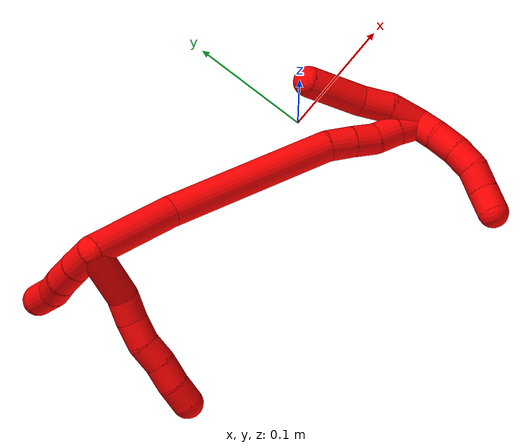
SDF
<sdf version="1.7">
 <world name="default">
  <model name="2">
   <static>0</static>
   <link name="2">
    <collision name="collision-cylinder-e_1_2_8">
     <pose>0.00208 -0.023793 -0.00298 1.6954 0.086504 0.097998</pose>
     <geometry><cylinder><radius>0.0125</radius><length>0.048139</length></cylinder></geometry>
     <surface>
      <friction><ode><mu>1.16</mu><mu2>1.16</mu2><slip1>0</slip1><slip2>0</slip2></ode></friction>
      <contact><ode><kp>1e+06</kp><kd>1</kd><max_vel>0</max_vel><min_depth>0.001</min_depth></ode></contact>
     </surface>
    </collision>
    <visual name="visual-cylinder-e_1_2_8">
     <pose>0.00208 -0.023793 -0.00298 1.6954 0.086504 0.097998</pose>
     <geometry><cylinder><radius>0.0125</radius><length>0.048139</length></cylinder></geometry>
     <material><ambient>1 0 0 1</ambient></material>
    </visual>
    <collision name="collision-cylinder-e_2_8_9">
     <pose>0.001766 -0.057552 -0.006656 1.6405 -0.235102 -0.251916</pose>
     <geometry><cylinder><radius>0.0125</radius><length>0.020544</length></cylinder></geometry>
     <surface>
      <friction><ode><mu>1.16</mu><mu2>1.16</mu2><slip1>0</slip1><slip2>0</slip2></ode></friction>
      <contact><ode><kp>1e+06</kp><kd>1</kd><max_vel>0</max_vel><min_depth>0.001</min_depth></ode></contact>
     </surface>
    </collision>
    <visual name="visual-cylinder-e_2_8_9">
     <pose>0.001766 -0.057552 -0.006656 1.6405 -0.235102 -0.251916</pose>
     <geometry><cylinder><radius>0.0125</radius><length>0.020544</length></cylinder></geometry>
     <material><ambient>1 0 0 1</ambient></material>
    </visual>
    <collision name="collision-cylinder-e_3_9_10">
     <pose>-0.003175 -0.077394 -0.006435 1.47822 -0.251513 -0.229448</pose>
     <geometry><cylinder><radius>0.0125</radius><length>0.020483</length></cylinder></geometry>
     <surface>
      <friction><ode><mu>1.16</mu><mu2>1.16</mu2><slip1>0</slip1><slip2>0</slip2></ode></friction>
      <contact><ode><kp>1e+06</kp><kd>1</kd><max_vel>0</max_vel><min_depth>0.001</min_depth></ode></contact>
     </surface>
    </collision>
    <visual name="visual-cylinder-e_3_9_10">
     <pose>-0.003175 -0.077394 -0.006435 1.47822 -0.251513 -0.229448</pose>
     <geometry><cylinder><radius>0.0125</radius><length>0.020483</length></cylinder></geometry>
     <material><ambient>1 0 0 1</ambient></material>
    </visual>
    <collision name="collision-cylinder-e_4_10_11">
     <pose>-0.006007 -0.097222 -0.003644 1.38459 -0.027922 -0.023153</pose>
     <geometry><cylinder><radius>0.0125</radius><length>0.020259</length></cylinder></geometry>
     <surface>
      <friction><ode><mu>1.16</mu><mu2>1.16</mu2><slip1>0</slip1><slip2>0</slip2></ode></friction>
      <contact><ode><kp>1e+06</kp><kd>1</kd><max_vel>0</max_vel><min_depth>0.001</min_depth></ode></contact>
     </surface>
    </collision>
    <visual name="visual-cylinder-e_4_10_11">
     <pose>-0.006007 -0.097222 -0.003644 1.38459 -0.027922 -0.023153</pose>
     <geometry><cylinder><radius>0.0125</radius><length>0.020259</length></cylinder></geometry>
     <material><ambient>1 0 0 1</ambient></material>
    </visual>
    <collision name="collision-cylinder-e_5_11_12">
     <pose>-0.007744 -0.11729 -0.000705 1.46605 -0.141949 -0.127849</pose>
     <geometry><cylinder><radius>0.0125</radius><length>0.020553</length></cylinder></geometry>
     <surface>
      <friction><ode><mu>1.16</mu><mu2>1.16</mu2><slip1>0</slip1><slip2>0</slip2></ode></friction>
      <contact><ode><kp>1e+06</kp><kd>1</kd><max_vel>0</max_vel><min_depth>0.001</min_depth></ode></contact>
     </surface>
    </collision>
    <visual name="visual-cylinder-e_5_11_12">
     <pose>-0.007744 -0.11729 -0.000705 1.46605 -0.141949 -0.127849</pose>
     <geometry><cylinder><radius>0.0125</radius><length>0.020553</length></cylinder></geometry>
     <material><ambient>1 0 0 1</ambient></material>
    </visual>
    <collision name="collision-cylinder-e_6_12_6">
     <pose>-0.009219 -0.13739 0.001107 1.49593 -0.002163 -0.002007</pose>
     <geometry><cylinder><radius>0.0125</radius><length>0.020022</length></cylinder></geometry>
     <surface>
      <friction><ode><mu>1.16</mu><mu2>1.16</mu2><slip1>0</slip1><slip2>0</slip2></ode></friction>
      <contact><ode><kp>1e+06</kp><kd>1</kd><max_vel>0</max_vel><min_depth>0.001</min_depth></ode></contact>
     </surface>
    </collision>
    <visual name="visual-cylinder-e_6_12_6">
     <pose>-0.009219 -0.13739 0.001107 1.49593 -0.002163 -0.002007</pose>
     <geometry><cylinder><radius>0.0125</radius><length>0.020022</length></cylinder></geometry>
     <material><ambient>1 0 0 1</ambient></material>
    </visual>
    <collision name="collision-cylinder-e_1_2_13">
     <pose>-0.001493 -0.004804 -0.011529 2.74676 -0.119007 -0.578945</pose>
     <geometry><cylinder><radius>0.0125</radius><length>0.025158</length></cylinder></geometry>
     <surface>
      <friction><ode><mu>1.16</mu><mu2>1.16</mu2><slip1>0</slip1><slip2>0</slip2></ode></friction>
      <contact><ode><kp>1e+06</kp><kd>1</kd><max_vel>0</max_vel><min_depth>0.001</min_depth></ode></contact>
     </surface>
    </collision>
    <visual name="visual-cylinder-e_1_2_13">
     <pose>-0.001493 -0.004804 -0.011529 2.74676 -0.119007 -0.578945</pose>
     <geometry><cylinder><radius>0.0125</radius><length>0.025158</length></cylinder></geometry>
     <material><ambient>1 0 0 1</ambient></material>
    </visual>
    <collision name="collision-cylinder-e_2_13_14">
     <pose>-0.003726 -0.014558 -0.0342 2.72359 -0.060586 -0.283818</pose>
     <geometry><cylinder><radius>0.0125</radius><length>0.024427</length></cylinder></geometry>
     <surface>
      <friction><ode><mu>1.16</mu><mu2>1.16</mu2><slip1>0</slip1><slip2>0</slip2></ode></friction>
      <contact><ode><kp>1e+06</kp><kd>1</kd><max_vel>0</max_vel><min_depth>0.001</min_depth></ode></contact>
     </surface>
    </collision>
    <visual name="visual-cylinder-e_2_13_14">
     <pose>-0.003726 -0.014558 -0.0342 2.72359 -0.060586 -0.283818</pose>
     <geometry><cylinder><radius>0.0125</radius><length>0.024427</length></cylinder></geometry>
     <material><ambient>1 0 0 1</ambient></material>
    </visual>
    <collision name="collision-cylinder-e_3_14_15">
     <pose>-0.002691 -0.025088 -0.055671 2.64622 0.150079 0.577952</pose>
     <geometry><cylinder><radius>0.0125</radius><length>0.023749</length></cylinder></geometry>
     <surface>
      <friction><ode><mu>1.16</mu><mu2>1.16</mu2><slip1>0</slip1><slip2>0</slip2></ode></friction>
      <contact><ode><kp>1e+06</kp><kd>1</kd><max_vel>0</max_vel><min_depth>0.001</min_depth></ode></contact>
     </surface>
    </collision>
    <visual name="visual-cylinder-e_3_14_15">
     <pose>-0.002691 -0.025088 -0.055671 2.64622 0.150079 0.577952</pose>
     <geometry><cylinder><radius>0.0125</radius><length>0.023749</length></cylinder></geometry>
     <material><ambient>1 0 0 1</ambient></material>
    </visual>
    <collision name="collision-cylinder-e_4_15_5">
     <pose>-7.8e-05 -0.034319 -0.078797 2.86373 0.062801 0.441922</pose>
     <geometry><cylinder><radius>0.0125</radius><length>0.026666</length></cylinder></geometry>
     <surface>
      <friction><ode><mu>1.16</mu><mu2>1.16</mu2><slip1>0</slip1><slip2>0</slip2></ode></friction>
      <contact><ode><kp>1e+06</kp><kd>1</kd><max_vel>0</max_vel><min_depth>0.001</min_depth></ode></contact>
     </surface>
    </collision>
    <visual name="visual-cylinder-e_4_15_5">
     <pose>-7.8e-05 -0.034319 -0.078797 2.86373 0.062801 0.441922</pose>
     <geometry><cylinder><radius>0.0125</radius><length>0.026666</length></cylinder></geometry>
     <material><ambient>1 0 0 1</ambient></material>
    </visual>
    <collision name="collision-cylinder-e_1_2_16">
     <pose>0.034034 -0.010173 0.010601 0.764784 1.16327 0.51705</pose>
     <geometry><cylinder><radius>0.0125</radius><length>0.07414</length></cylinder></geometry>
     <surface>
      <friction><ode><mu>1.16</mu><mu2>1.16</mu2><slip1>0</slip1><slip2>0</slip2></ode></friction>
      <contact><ode><kp>1e+06</kp><kd>1</kd><max_vel>0</max_vel><min_depth>0.001</min_depth></ode></contact>
     </surface>
    </collision>
    <visual name="visual-cylinder-e_1_2_16">
     <pose>0.034034 -0.010173 0.010601 0.764784 1.16327 0.51705</pose>
     <geometry><cylinder><radius>0.0125</radius><length>0.07414</length></cylinder></geometry>
     <material><ambient>1 0 0 1</ambient></material>
    </visual>
    <collision name="collision-cylinder-e_2_16_17">
     <pose>0.129121 -0.041336 0.051568 0.604831 1.02697 0.348318</pose>
     <geometry><cylinder><radius>0.0125</radius><length>0.142691</length></cylinder></geometry>
     <surface>
      <friction><ode><mu>1.16</mu><mu2>1.16</mu2><slip1>0</slip1><slip2>0</slip2></ode></friction>
      <contact><ode><kp>1e+06</kp><kd>1</kd><max_vel>0</max_vel><min_depth>0.001</min_depth></ode></contact>
     </surface>
    </collision>
    <visual name="visual-cylinder-e_2_16_17">
     <pose>0.129121 -0.041336 0.051568 0.604831 1.02697 0.348318</pose>
     <geometry><cylinder><radius>0.0125</radius><length>0.142691</length></cylinder></geometry>
     <material><ambient>1 0 0 1</ambient></material>
    </visual>
    <collision name="collision-cylinder-e_3_17_18">
     <pose>0.198634 -0.067629 0.086993 0.808861 0.857034 0.386195</pose>
     <geometry><cylinder><radius>0.0125</radius><length>0.022386</length></cylinder></geometry>
     <surface>
      <friction><ode><mu>1.16</mu><mu2>1.16</mu2><slip1>0</slip1><slip2>0</slip2></ode></friction>
      <contact><ode><kp>1e+06</kp><kd>1</kd><max_vel>0</max_vel><min_depth>0.001</min_depth></ode></contact>
     </surface>
    </collision>
    <visual name="visual-cylinder-e_3_17_18">
     <pose>0.198634 -0.067629 0.086993 0.808861 0.857034 0.386195</pose>
     <geometry><cylinder><radius>0.0125</radius><length>0.022386</length></cylinder></geometry>
     <material><ambient>1 0 0 1</ambient></material>
    </visual>
    <collision name="collision-cylinder-e_4_18_19">
     <pose>0.214582 -0.078114 0.09656 0.854994 0.82831 0.395311</pose>
     <geometry><cylinder><radius>0.0125</radius><length>0.020321</length></cylinder></geometry>
     <surface>
      <friction><ode><mu>1.16</mu><mu2>1.16</mu2><slip1>0</slip1><slip2>0</slip2></ode></friction>
      <contact><ode><kp>1e+06</kp><kd>1</kd><max_vel>0</max_vel><min_depth>0.001</min_depth></ode></contact>
     </surface>
    </collision>
    <visual name="visual-cylinder-e_4_18_19">
     <pose>0.214582 -0.078114 0.09656 0.854994 0.82831 0.395311</pose>
     <geometry><cylinder><radius>0.0125</radius><length>0.020321</length></cylinder></geometry>
     <material><ambient>1 0 0 1</ambient></material>
    </visual>
    <collision name="collision-cylinder-e_5_19_20">
     <pose>0.230676 -0.086311 0.105355 0.61264 1.02399 0.351805</pose>
     <geometry><cylinder><radius>0.0125</radius><length>0.020156</length></cylinder></geometry>
     <surface>
      <friction><ode><mu>1.16</mu><mu2>1.16</mu2><slip1>0</slip1><slip2>0</slip2></ode></friction>
      <contact><ode><kp>1e+06</kp><kd>1</kd><max_vel>0</max_vel><min_depth>0.001</min_depth></ode></contact>
     </surface>
    </collision>
    <visual name="visual-cylinder-e_5_19_20">
     <pose>0.230676 -0.086311 0.105355 0.61264 1.02399 0.351805</pose>
     <geometry><cylinder><radius>0.0125</radius><length>0.020156</length></cylinder></geometry>
     <material><ambient>1 0 0 1</ambient></material>
    </visual>
    <collision name="collision-cylinder-e_6_20_1">
     <pose>0.247363 -0.093262 0.114368 0.694669 0.920037 0.354957</pose>
     <geometry><cylinder><radius>0.0125</radius><length>0.020306</length></cylinder></geometry>
     <surface>
      <friction><ode><mu>1.16</mu><mu2>1.16</mu2><slip1>0</slip1><slip2>0</slip2></ode></friction>
      <contact><ode><kp>1e+06</kp><kd>1</kd><max_vel>0</max_vel><min_depth>0.001</min_depth></ode></contact>
     </surface>
    </collision>
    <visual name="visual-cylinder-e_6_20_1">
     <pose>0.247363 -0.093262 0.114368 0.694669 0.920037 0.354957</pose>
     <geometry><cylinder><radius>0.0125</radius><length>0.020306</length></cylinder></geometry>
     <material><ambient>1 0 0 1</ambient></material>
    </visual>
    <collision name="collision-cylinder-e_1_1_21">
     <pose>0.252471 -0.102523 0.12702 0.591498 -0.301507 -0.092501</pose>
     <geometry><cylinder><radius>0.0125</radius><length>0.02</length></cylinder></geometry>
     <surface>
      <friction><ode><mu>1.16</mu><mu2>1.16</mu2><slip1>0</slip1><slip2>0</slip2></ode></friction>
      <contact><ode><kp>1e+06</kp><kd>1</kd><max_vel>0</max_vel><min_depth>0.001</min_depth></ode></contact>
     </surface>
    </collision>
    <visual name="visual-cylinder-e_1_1_21">
     <pose>0.252471 -0.102523 0.12702 0.591498 -0.301507 -0.092501</pose>
     <geometry><cylinder><radius>0.0125</radius><length>0.02</length></cylinder></geometry>
     <material><ambient>1 0 0 1</ambient></material>
    </visual>
    <collision name="collision-cylinder-e_2_21_22">
     <pose>0.247329 -0.114872 0.141724 0.80324 -0.219035 -0.093331</pose>
     <geometry><cylinder><radius>0.0125</radius><length>0.02</length></cylinder></geometry>
     <surface>
      <friction><ode><mu>1.16</mu><mu2>1.16</mu2><slip1>0</slip1><slip2>0</slip2></ode></friction>
      <contact><ode><kp>1e+06</kp><kd>1</kd><max_vel>0</max_vel><min_depth>0.001</min_depth></ode></contact>
     </surface>
    </collision>
    <visual name="visual-cylinder-e_2_21_22">
     <pose>0.247329 -0.114872 0.141724 0.80324 -0.219035 -0.093331</pose>
     <geometry><cylinder><radius>0.0125</radius><length>0.02</length></cylinder></geometry>
     <material><ambient>1 0 0 1</ambient></material>
    </visual>
    <collision name="collision-cylinder-e_3_22_23">
     <pose>0.241901 -0.129408 0.154245 0.918124 -0.331491 -0.164992</pose>
     <geometry><cylinder><radius>0.0125</radius><length>0.02</length></cylinder></geometry>
     <surface>
      <friction><ode><mu>1.16</mu><mu2>1.16</mu2><slip1>0</slip1><slip2>0</slip2></ode></friction>
      <contact><ode><kp>1e+06</kp><kd>1</kd><max_vel>0</max_vel><min_depth>0.001</min_depth></ode></contact>
     </surface>
    </collision>
    <visual name="visual-cylinder-e_3_22_23">
     <pose>0.241901 -0.129408 0.154245 0.918124 -0.331491 -0.164992</pose>
     <geometry><cylinder><radius>0.0125</radius><length>0.02</length></cylinder></geometry>
     <material><ambient>1 0 0 1</ambient></material>
    </visual>
    <collision name="collision-cylinder-e_4_23_24">
     <pose>0.233502 -0.144901 0.163125 1.19616 -0.540322 -0.372976</pose>
     <geometry><cylinder><radius>0.0125</radius><length>0.02</length></cylinder></geometry>
     <surface>
      <friction><ode><mu>1.16</mu><mu2>1.16</mu2><slip1>0</slip1><slip2>0</slip2></ode></friction>
      <contact><ode><kp>1e+06</kp><kd>1</kd><max_vel>0</max_vel><min_depth>0.001</min_depth></ode></contact>
     </surface>
    </collision>
    <visual name="visual-cylinder-e_4_23_24">
     <pose>0.233502 -0.144901 0.163125 1.19616 -0.540322 -0.372976</pose>
     <geometry><cylinder><radius>0.0125</radius><length>0.02</length></cylinder></geometry>
     <material><ambient>1 0 0 1</ambient></material>
    </visual>
    <collision name="collision-cylinder-e_5_24_4">
     <pose>0.222579 -0.160066 0.170134 1.0766 -0.616256 -0.375606</pose>
     <geometry><cylinder><radius>0.0125</radius><length>0.02</length></cylinder></geometry>
     <surface>
      <friction><ode><mu>1.16</mu><mu2>1.16</mu2><slip1>0</slip1><slip2>0</slip2></ode></friction>
      <contact><ode><kp>1e+06</kp><kd>1</kd><max_vel>0</max_vel><min_depth>0.001</min_depth></ode></contact>
     </surface>
    </collision>
    <visual name="visual-cylinder-e_5_24_4">
     <pose>0.222579 -0.160066 0.170134 1.0766 -0.616256 -0.375606</pose>
     <geometry><cylinder><radius>0.0125</radius><length>0.02</length></cylinder></geometry>
     <material><ambient>1 0 0 1</ambient></material>
    </visual>
    <collision name="collision-cylinder-e_1_1_25">
     <pose>0.251653 -0.085017 0.113704 -1.98731 -0.277005 0.421822</pose>
     <geometry><cylinder><radius>0.0125</radius><length>0.027697</length></cylinder></geometry>
     <surface>
      <friction><ode><mu>1.16</mu><mu2>1.16</mu2><slip1>0</slip1><slip2>0</slip2></ode></friction>
      <contact><ode><kp>1e+06</kp><kd>1</kd><max_vel>0</max_vel><min_depth>0.001</min_depth></ode></contact>
     </surface>
    </collision>
    <visual name="visual-cylinder-e_1_1_25">
     <pose>0.251653 -0.085017 0.113704 -1.98731 -0.277005 0.421822</pose>
     <geometry><cylinder><radius>0.0125</radius><length>0.027697</length></cylinder></geometry>
     <material><ambient>1 0 0 1</ambient></material>
    </visual>
    <collision name="collision-cylinder-e_2_25_26">
     <pose>0.242227 -0.063564 0.101798 -2.18342 -0.461756 0.849923</pose>
     <geometry><cylinder><radius>0.0125</radius><length>0.025317</length></cylinder></geometry>
     <surface>
      <friction><ode><mu>1.16</mu><mu2>1.16</mu2><slip1>0</slip1><slip2>0</slip2></ode></friction>
      <contact><ode><kp>1e+06</kp><kd>1</kd><max_vel>0</max_vel><min_depth>0.001</min_depth></ode></contact>
     </surface>
    </collision>
    <visual name="visual-cylinder-e_2_25_26">
     <pose>0.242227 -0.063564 0.101798 -2.18342 -0.461756 0.849923</pose>
     <geometry><cylinder><radius>0.0125</radius><length>0.025317</length></cylinder></geometry>
     <material><ambient>1 0 0 1</ambient></material>
    </visual>
    <collision name="collision-cylinder-e_3_26_3">
     <pose>0.22616 -0.035154 0.086512 -2.00047 -0.459893 0.699521</pose>
     <geometry><cylinder><radius>0.0125</radius><length>0.046987</length></cylinder></geometry>
     <surface>
      <friction><ode><mu>1.16</mu><mu2>1.16</mu2><slip1>0</slip1><slip2>0</slip2></ode></friction>
      <contact><ode><kp>1e+06</kp><kd>1</kd><max_vel>0</max_vel><min_depth>0.001</min_depth></ode></contact>
     </surface>
    </collision>
    <visual name="visual-cylinder-e_3_26_3">
     <pose>0.22616 -0.035154 0.086512 -2.00047 -0.459893 0.699521</pose>
     <geometry><cylinder><radius>0.0125</radius><length>0.046987</length></cylinder></geometry>
     <material><ambient>1 0 0 1</ambient></material>
    </visual>
    <collision name="collision-sphere-3">
     <pose>0.215732 -0.016015 0.077742 0 -0 0</pose>
     <geometry><sphere><radius>0.0125</radius></sphere></geometry>
     <surface>
      <friction><ode><mu>1.16</mu><mu2>1.16</mu2><slip1>0</slip1><slip2>0</slip2></ode></friction>
      <contact><ode><kp>1e+06</kp><kd>1</kd><max_vel>0</max_vel><min_depth>0.001</min_depth></ode></contact>
     </surface>
    </collision>
    <visual name="visual-sphere-3">
     <pose>0.215732 -0.016015 0.077742 0 -0 0</pose>
     <geometry><sphere><radius>0.0125</radius></sphere></geometry>
     <material><ambient>1 0 0 1</ambient></material>
    </visual>
    <collision name="collision-sphere-26">
     <pose>0.236587 -0.054292 0.095282 0 -0 0</pose>
     <geometry><sphere><radius>0.0125</radius></sphere></geometry>
     <surface>
      <friction><ode><mu>1.16</mu><mu2>1.16</mu2><slip1>0</slip1><slip2>0</slip2></ode></friction>
      <contact><ode><kp>1e+06</kp><kd>1</kd><max_vel>0</max_vel><min_depth>0.001</min_depth></ode></contact>
     </surface>
    </collision>
    <visual name="visual-sphere-26">
     <pose>0.236587 -0.054292 0.095282 0 -0 0</pose>
     <geometry><sphere><radius>0.0125</radius></sphere></geometry>
     <material><ambient>1 0 0 1</ambient></material>
    </visual>
    <collision name="collision-sphere-25">
     <pose>0.247866 -0.072836 0.108315 0 -0 0</pose>
     <geometry><sphere><radius>0.0125</radius></sphere></geometry>
     <surface>
      <friction><ode><mu>1.16</mu><mu2>1.16</mu2><slip1>0</slip1><slip2>0</slip2></ode></friction>
      <contact><ode><kp>1e+06</kp><kd>1</kd><max_vel>0</max_vel><min_depth>0.001</min_depth></ode></contact>
     </surface>
    </collision>
    <visual name="visual-sphere-25">
     <pose>0.247866 -0.072836 0.108315 0 -0 0</pose>
     <geometry><sphere><radius>0.0125</radius></sphere></geometry>
     <material><ambient>1 0 0 1</ambient></material>
    </visual>
    <collision name="collision-sphere-4">
     <pose>0.216799 -0.16725 0.174005 0 -0 0</pose>
     <geometry><sphere><radius>0.0125</radius></sphere></geometry>
     <surface>
      <friction><ode><mu>1.16</mu><mu2>1.16</mu2><slip1>0</slip1><slip2>0</slip2></ode></friction>
      <contact><ode><kp>1e+06</kp><kd>1</kd><max_vel>0</max_vel><min_depth>0.001</min_depth></ode></contact>
     </surface>
    </collision>
    <visual name="visual-sphere-4">
     <pose>0.216799 -0.16725 0.174005 0 -0 0</pose>
     <geometry><sphere><radius>0.0125</radius></sphere></geometry>
     <material><ambient>1 0 0 1</ambient></material>
    </visual>
    <collision name="collision-sphere-24">
     <pose>0.228358 -0.152882 0.166263 0 -0 0</pose>
     <geometry><sphere><radius>0.0125</radius></sphere></geometry>
     <surface>
      <friction><ode><mu>1.16</mu><mu2>1.16</mu2><slip1>0</slip1><slip2>0</slip2></ode></friction>
      <contact><ode><kp>1e+06</kp><kd>1</kd><max_vel>0</max_vel><min_depth>0.001</min_depth></ode></contact>
     </surface>
    </collision>
    <visual name="visual-sphere-24">
     <pose>0.228358 -0.152882 0.166263 0 -0 0</pose>
     <geometry><sphere><radius>0.0125</radius></sphere></geometry>
     <material><ambient>1 0 0 1</ambient></material>
    </visual>
    <collision name="collision-sphere-23">
     <pose>0.238647 -0.136921 0.159987 0 -0 0</pose>
     <geometry><sphere><radius>0.0125</radius></sphere></geometry>
     <surface>
      <friction><ode><mu>1.16</mu><mu2>1.16</mu2><slip1>0</slip1><slip2>0</slip2></ode></friction>
      <contact><ode><kp>1e+06</kp><kd>1</kd><max_vel>0</max_vel><min_depth>0.001</min_depth></ode></contact>
     </surface>
    </collision>
    <visual name="visual-sphere-23">
     <pose>0.238647 -0.136921 0.159987 0 -0 0</pose>
     <geometry><sphere><radius>0.0125</radius></sphere></geometry>
     <material><ambient>1 0 0 1</ambient></material>
    </visual>
    <collision name="collision-sphere-22">
     <pose>0.245156 -0.121896 0.148502 0 -0 0</pose>
     <geometry><sphere><radius>0.0125</radius></sphere></geometry>
     <surface>
      <friction><ode><mu>1.16</mu><mu2>1.16</mu2><slip1>0</slip1><slip2>0</slip2></ode></friction>
      <contact><ode><kp>1e+06</kp><kd>1</kd><max_vel>0</max_vel><min_depth>0.001</min_depth></ode></contact>
     </surface>
    </collision>
    <visual name="visual-sphere-22">
     <pose>0.245156 -0.121896 0.148502 0 -0 0</pose>
     <geometry><sphere><radius>0.0125</radius></sphere></geometry>
     <material><ambient>1 0 0 1</ambient></material>
    </visual>
    <collision name="collision-sphere-21">
     <pose>0.249501 -0.107848 0.134946 0 -0 0</pose>
     <geometry><sphere><radius>0.0125</radius></sphere></geometry>
     <surface>
      <friction><ode><mu>1.16</mu><mu2>1.16</mu2><slip1>0</slip1><slip2>0</slip2></ode></friction>
      <contact><ode><kp>1e+06</kp><kd>1</kd><max_vel>0</max_vel><min_depth>0.001</min_depth></ode></contact>
     </surface>
    </collision>
    <visual name="visual-sphere-21">
     <pose>0.249501 -0.107848 0.134946 0 -0 0</pose>
     <geometry><sphere><radius>0.0125</radius></sphere></geometry>
     <material><ambient>1 0 0 1</ambient></material>
    </visual>
    <collision name="collision-sphere-1">
     <pose>0.255441 -0.097199 0.119093 0 -0 0</pose>
     <geometry><sphere><radius>0.0125</radius></sphere></geometry>
     <surface>
      <friction><ode><mu>1.16</mu><mu2>1.16</mu2><slip1>0</slip1><slip2>0</slip2></ode></friction>
      <contact><ode><kp>1e+06</kp><kd>1</kd><max_vel>0</max_vel><min_depth>0.001</min_depth></ode></contact>
     </surface>
    </collision>
    <visual name="visual-sphere-1">
     <pose>0.255441 -0.097199 0.119093 0 -0 0</pose>
     <geometry><sphere><radius>0.0125</radius></sphere></geometry>
     <material><ambient>1 0 0 1</ambient></material>
    </visual>
    <collision name="collision-sphere-12">
     <pose>-0.009197 -0.127407 0.000358 0 -0 0</pose>
     <geometry><sphere><radius>0.0125</radius></sphere></geometry>
     <surface>
      <friction><ode><mu>1.16</mu><mu2>1.16</mu2><slip1>0</slip1><slip2>0</slip2></ode></friction>
      <contact><ode><kp>1e+06</kp><kd>1</kd><max_vel>0</max_vel><min_depth>0.001</min_depth></ode></contact>
     </surface>
    </collision>
    <visual name="visual-sphere-12">
     <pose>-0.009197 -0.127407 0.000358 0 -0 0</pose>
     <geometry><sphere><radius>0.0125</radius></sphere></geometry>
     <material><ambient>1 0 0 1</ambient></material>
    </visual>
    <collision name="collision-sphere-11">
     <pose>-0.00629 -0.107172 -0.001769 0 -0 0</pose>
     <geometry><sphere><radius>0.0125</radius></sphere></geometry>
     <surface>
      <friction><ode><mu>1.16</mu><mu2>1.16</mu2><slip1>0</slip1><slip2>0</slip2></ode></friction>
      <contact><ode><kp>1e+06</kp><kd>1</kd><max_vel>0</max_vel><min_depth>0.001</min_depth></ode></contact>
     </surface>
    </collision>
    <visual name="visual-sphere-11">
     <pose>-0.00629 -0.107172 -0.001769 0 -0 0</pose>
     <geometry><sphere><radius>0.0125</radius></sphere></geometry>
     <material><ambient>1 0 0 1</ambient></material>
    </visual>
    <collision name="collision-sphere-10">
     <pose>-0.005724 -0.087271 -0.005518 0 -0 0</pose>
     <geometry><sphere><radius>0.0125</radius></sphere></geometry>
     <surface>
      <friction><ode><mu>1.16</mu><mu2>1.16</mu2><slip1>0</slip1><slip2>0</slip2></ode></friction>
      <contact><ode><kp>1e+06</kp><kd>1</kd><max_vel>0</max_vel><min_depth>0.001</min_depth></ode></contact>
     </surface>
    </collision>
    <visual name="visual-sphere-10">
     <pose>-0.005724 -0.087271 -0.005518 0 -0 0</pose>
     <geometry><sphere><radius>0.0125</radius></sphere></geometry>
     <material><ambient>1 0 0 1</ambient></material>
    </visual>
    <collision name="collision-sphere-9">
     <pose>-0.000627 -0.067517 -0.007352 0 -0 0</pose>
     <geometry><sphere><radius>0.0125</radius></sphere></geometry>
     <surface>
      <friction><ode><mu>1.16</mu><mu2>1.16</mu2><slip1>0</slip1><slip2>0</slip2></ode></friction>
      <contact><ode><kp>1e+06</kp><kd>1</kd><max_vel>0</max_vel><min_depth>0.001</min_depth></ode></contact>
     </surface>
    </collision>
    <visual name="visual-sphere-9">
     <pose>-0.000627 -0.067517 -0.007352 0 -0 0</pose>
     <geometry><sphere><radius>0.0125</radius></sphere></geometry>
     <material><ambient>1 0 0 1</ambient></material>
    </visual>
    <collision name="collision-sphere-2">
     <geometry><sphere><radius>0.0125</radius></sphere></geometry>
     <surface>
      <friction><ode><mu>1.16</mu><mu2>1.16</mu2><slip1>0</slip1><slip2>0</slip2></ode></friction>
      <contact><ode><kp>1e+06</kp><kd>1</kd><max_vel>0</max_vel><min_depth>0.001</min_depth></ode></contact>
     </surface>
    </collision>
    <visual name="visual-sphere-2">
     <geometry><sphere><radius>0.0125</radius></sphere></geometry>
     <material><ambient>1 0 0 1</ambient></material>
    </visual>
    <collision name="collision-sphere-19">
     <pose>0.222068 -0.083298 0.101068 0 -0 0</pose>
     <geometry><sphere><radius>0.0125</radius></sphere></geometry>
     <surface>
      <friction><ode><mu>1.16</mu><mu2>1.16</mu2><slip1>0</slip1><slip2>0</slip2></ode></friction>
      <contact><ode><kp>1e+06</kp><kd>1</kd><max_vel>0</max_vel><min_depth>0.001</min_depth></ode></contact>
     </surface>
    </collision>
    <visual name="visual-sphere-19">
     <pose>0.222068 -0.083298 0.101068 0 -0 0</pose>
     <geometry><sphere><radius>0.0125</radius></sphere></geometry>
     <material><ambient>1 0 0 1</ambient></material>
    </visual>
    <collision name="collision-sphere-8">
     <pose>0.004159 -0.047587 -0.005961 0 -0 0</pose>
     <geometry><sphere><radius>0.0125</radius></sphere></geometry>
     <surface>
      <friction><ode><mu>1.16</mu><mu2>1.16</mu2><slip1>0</slip1><slip2>0</slip2></ode></friction>
      <contact><ode><kp>1e+06</kp><kd>1</kd><max_vel>0</max_vel><min_depth>0.001</min_depth></ode></contact>
     </surface>
    </collision>
    <visual name="visual-sphere-8">
     <pose>0.004159 -0.047587 -0.005961 0 -0 0</pose>
     <geometry><sphere><radius>0.0125</radius></sphere></geometry>
     <material><ambient>1 0 0 1</ambient></material>
    </visual>
    <collision name="collision-sphere-6">
     <pose>-0.009241 -0.147373 0.001856 0 -0 0</pose>
     <geometry><sphere><radius>0.0125</radius></sphere></geometry>
     <surface>
      <friction><ode><mu>1.16</mu><mu2>1.16</mu2><slip1>0</slip1><slip2>0</slip2></ode></friction>
      <contact><ode><kp>1e+06</kp><kd>1</kd><max_vel>0</max_vel><min_depth>0.001</min_depth></ode></contact>
     </surface>
    </collision>
    <visual name="visual-sphere-6">
     <pose>-0.009241 -0.147373 0.001856 0 -0 0</pose>
     <geometry><sphere><radius>0.0125</radius></sphere></geometry>
     <material><ambient>1 0 0 1</ambient></material>
    </visual>
    <collision name="collision-sphere-13">
     <pose>-0.002987 -0.009609 -0.023059 0 -0 0</pose>
     <geometry><sphere><radius>0.0125</radius></sphere></geometry>
     <surface>
      <friction><ode><mu>1.16</mu><mu2>1.16</mu2><slip1>0</slip1><slip2>0</slip2></ode></friction>
      <contact><ode><kp>1e+06</kp><kd>1</kd><max_vel>0</max_vel><min_depth>0.001</min_depth></ode></contact>
     </surface>
    </collision>
    <visual name="visual-sphere-13">
     <pose>-0.002987 -0.009609 -0.023059 0 -0 0</pose>
     <geometry><sphere><radius>0.0125</radius></sphere></geometry>
     <material><ambient>1 0 0 1</ambient></material>
    </visual>
    <collision name="collision-sphere-14">
     <pose>-0.004466 -0.019506 -0.045341 0 -0 0</pose>
     <geometry><sphere><radius>0.0125</radius></sphere></geometry>
     <surface>
      <friction><ode><mu>1.16</mu><mu2>1.16</mu2><slip1>0</slip1><slip2>0</slip2></ode></friction>
      <contact><ode><kp>1e+06</kp><kd>1</kd><max_vel>0</max_vel><min_depth>0.001</min_depth></ode></contact>
     </surface>
    </collision>
    <visual name="visual-sphere-14">
     <pose>-0.004466 -0.019506 -0.045341 0 -0 0</pose>
     <geometry><sphere><radius>0.0125</radius></sphere></geometry>
     <material><ambient>1 0 0 1</ambient></material>
    </visual>
    <collision name="collision-sphere-15">
     <pose>-0.000915 -0.030669 -0.066001 0 -0 0</pose>
     <geometry><sphere><radius>0.0125</radius></sphere></geometry>
     <surface>
      <friction><ode><mu>1.16</mu><mu2>1.16</mu2><slip1>0</slip1><slip2>0</slip2></ode></friction>
      <contact><ode><kp>1e+06</kp><kd>1</kd><max_vel>0</max_vel><min_depth>0.001</min_depth></ode></contact>
     </surface>
    </collision>
    <visual name="visual-sphere-15">
     <pose>-0.000915 -0.030669 -0.066001 0 -0 0</pose>
     <geometry><sphere><radius>0.0125</radius></sphere></geometry>
     <material><ambient>1 0 0 1</ambient></material>
    </visual>
    <collision name="collision-sphere-5">
     <pose>0.000758 -0.037969 -0.091593 0 -0 0</pose>
     <geometry><sphere><radius>0.0125</radius></sphere></geometry>
     <surface>
      <friction><ode><mu>1.16</mu><mu2>1.16</mu2><slip1>0</slip1><slip2>0</slip2></ode></friction>
      <contact><ode><kp>1e+06</kp><kd>1</kd><max_vel>0</max_vel><min_depth>0.001</min_depth></ode></contact>
     </surface>
    </collision>
    <visual name="visual-sphere-5">
     <pose>0.000758 -0.037969 -0.091593 0 -0 0</pose>
     <geometry><sphere><radius>0.0125</radius></sphere></geometry>
     <material><ambient>1 0 0 1</ambient></material>
    </visual>
    <collision name="collision-sphere-16">
     <pose>0.068068 -0.020345 0.021202 0 -0 0</pose>
     <geometry><sphere><radius>0.0125</radius></sphere></geometry>
     <surface>
      <friction><ode><mu>1.16</mu><mu2>1.16</mu2><slip1>0</slip1><slip2>0</slip2></ode></friction>
      <contact><ode><kp>1e+06</kp><kd>1</kd><max_vel>0</max_vel><min_depth>0.001</min_depth></ode></contact>
     </surface>
    </collision>
    <visual name="visual-sphere-16">
     <pose>0.068068 -0.020345 0.021202 0 -0 0</pose>
     <geometry><sphere><radius>0.0125</radius></sphere></geometry>
     <material><ambient>1 0 0 1</ambient></material>
    </visual>
    <collision name="collision-sphere-17">
     <pose>0.190174 -0.062327 0.081935 0 -0 0</pose>
     <geometry><sphere><radius>0.0125</radius></sphere></geometry>
     <surface>
      <friction><ode><mu>1.16</mu><mu2>1.16</mu2><slip1>0</slip1><slip2>0</slip2></ode></friction>
      <contact><ode><kp>1e+06</kp><kd>1</kd><max_vel>0</max_vel><min_depth>0.001</min_depth></ode></contact>
     </surface>
    </collision>
    <visual name="visual-sphere-17">
     <pose>0.190174 -0.062327 0.081935 0 -0 0</pose>
     <geometry><sphere><radius>0.0125</radius></sphere></geometry>
     <material><ambient>1 0 0 1</ambient></material>
    </visual>
    <collision name="collision-sphere-18">
     <pose>0.207095 -0.072931 0.092052 0 -0 0</pose>
     <geometry><sphere><radius>0.0125</radius></sphere></geometry>
     <surface>
      <friction><ode><mu>1.16</mu><mu2>1.16</mu2><slip1>0</slip1><slip2>0</slip2></ode></friction>
      <contact><ode><kp>1e+06</kp><kd>1</kd><max_vel>0</max_vel><min_depth>0.001</min_depth></ode></contact>
     </surface>
    </collision>
    <visual name="visual-sphere-18">
     <pose>0.207095 -0.072931 0.092052 0 -0 0</pose>
     <geometry><sphere><radius>0.0125</radius></sphere></geometry>
     <material><ambient>1 0 0 1</ambient></material>
    </visual>
    <collision name="collision-sphere-20">
     <pose>0.239285 -0.089325 0.109643 0 -0 0</pose>
     <geometry><sphere><radius>0.0125</radius></sphere></geometry>
     <surface>
      <friction><ode><mu>1.16</mu><mu2>1.16</mu2><slip1>0</slip1><slip2>0</slip2></ode></friction>
      <contact><ode><kp>1e+06</kp><kd>1</kd><max_vel>0</max_vel><min_depth>0.001</min_depth></ode></contact>
     </surface>
    </collision>
    <visual name="visual-sphere-20">
     <pose>0.239285 -0.089325 0.109643 0 -0 0</pose>
     <geometry><sphere><radius>0.0125</radius></sphere></geometry>
     <material><ambient>1 0 0 1</ambient></material>
    </visual>
    <inertial>
     <pose>0.115364 -0.060093 0.048519 0 -0 0</pose>
     <mass>0.75</mass>
     <inertia>
      <ixx>0.000254</ixx>
      <ixy>0</ixy>
      <ixz>0</ixz>
      <iyy>0.000307</iyy>
      <iyz>0</iyz>
      <izz>-0.000138</izz>
     </inertia>
    </inertial>
   </link>
   <pose>-0.204208 0.037413 0.09673 0.736832 0.428187 0.14281</pose>
  </model>
 </world>
</sdf>
